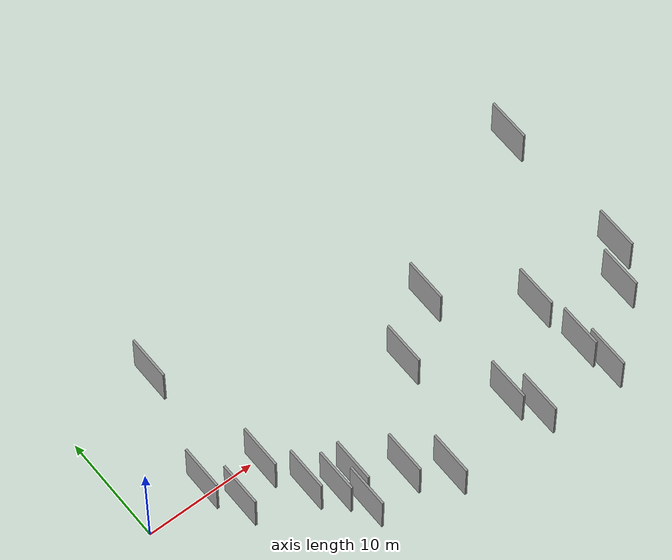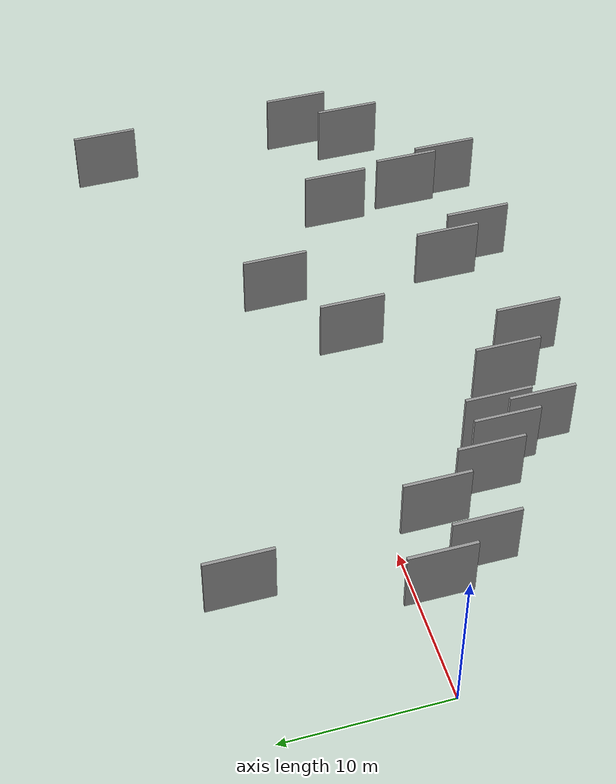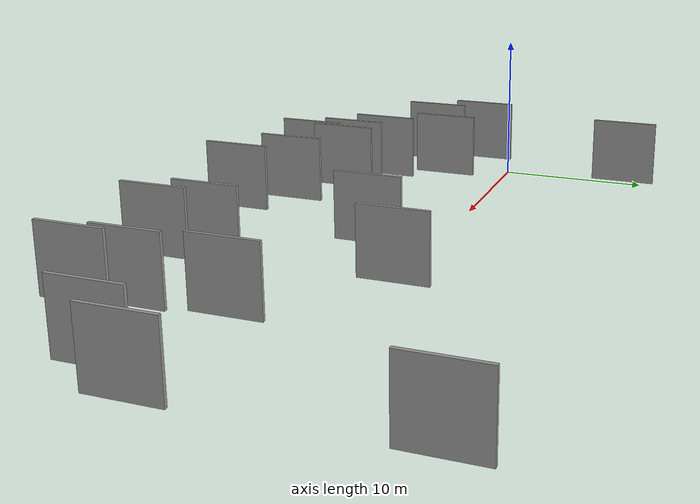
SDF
<sdf version="1.6">
 <world name="default">
  <scene>
   <sky><clouds><speed>12</speed></clouds></sky>
   <ambient>0.4 0.4 0.4 1</ambient>
   <background>0.7 0.7 0.7 1</background>
   <shadows>1</shadows>
  </scene>
  <gravity>0 0 -9.8066</gravity>
  <magnetic_field>6e-06 2.3e-05 -4.2e-05</magnetic_field>
  <physics default="0" name="default_physics" type="ode">
   <ode>
    <solver>
     <type>quick</type>
     <iters>10</iters>
     <sor>1.0</sor>
     <use_dynamic_moi_rescaling>0</use_dynamic_moi_rescaling>
    </solver>
    <constraints>
     <cfm>0</cfm>
     <erp>0.2</erp>
     <contact_max_correcting_vel>100</contact_max_correcting_vel>
     <contact_surface_layer>0.001</contact_surface_layer>
    </constraints>
   </ode>
   <max_step_size>0.004</max_step_size>
   <real_time_factor>1</real_time_factor>
   <real_time_update_rate>250</real_time_update_rate>
  </physics>
  <light name="sun" type="directional">
   <pose>0 0 10 0 0 0</pose>
   <diffuse>0.8 0.8 0.8 1</diffuse>
   <specular>0.2 0.2 0.2 1</specular>
   <attenuation>
    <range>1000</range>
    <constant>0.9</constant>
    <linear>0.01</linear>
    <quadratic>0.001</quadratic>
   </attenuation>
   <direction>-0.5 0.1 -0.9</direction>
  </light>
  <model name="grey_wall_1">
   <static>1</static>
   <pose>6.3646 -3.5503 2.5 0.000000 0.000000 1.570796</pose>
   <link name="link">
    <pose>0 0 2.00 0 0 0</pose>
    <collision name="collision"><geometry><box><size>4.00 0.2 4.00</size></box></geometry></collision>
    <visual name="visual">
     <cast_shadows>0</cast_shadows>
     <geometry><box><size>4.00 0.2 4.00</size></box></geometry>
     <material>
      <script>
       <uri>model://grey_wall/materials/scripts</uri>
       <uri>model://grey_wall/materials/textures</uri>
       <name>vrc/grey_wall</name>
      </script>
     </material>
    </visual>
   </link>
  </model>
  <model name="grey_wall_2">
   <static>1</static>
   <pose>18.1929 -9.2385 2.5 0.000000 0.000000 1.570796</pose>
   <link name="link">
    <pose>0 0 2.00 0 0 0</pose>
    <collision name="collision"><geometry><box><size>4.00 0.2 4.00</size></box></geometry></collision>
    <visual name="visual">
     <cast_shadows>0</cast_shadows>
     <geometry><box><size>4.00 0.2 4.00</size></box></geometry>
     <material>
      <script>
       <uri>model://grey_wall/materials/scripts</uri>
       <uri>model://grey_wall/materials/textures</uri>
       <name>vrc/grey_wall</name>
      </script>
     </material>
    </visual>
   </link>
  </model>
  <model name="grey_wall_3">
   <static>1</static>
   <pose>24.1748 -1.6012 2.5 0.000000 0.000000 1.570796</pose>
   <link name="link">
    <pose>0 0 2.00 0 0 0</pose>
    <collision name="collision"><geometry><box><size>4.00 0.2 4.00</size></box></geometry></collision>
    <visual name="visual">
     <cast_shadows>0</cast_shadows>
     <geometry><box><size>4.00 0.2 4.00</size></box></geometry>
     <material>
      <script>
       <uri>model://grey_wall/materials/scripts</uri>
       <uri>model://grey_wall/materials/textures</uri>
       <name>vrc/grey_wall</name>
      </script>
     </material>
    </visual>
   </link>
  </model>
  <model name="grey_wall_4">
   <static>1</static>
   <pose>12.9888 -7.2146 2.5 0.000000 0.000000 1.570796</pose>
   <link name="link">
    <pose>0 0 2.00 0 0 0</pose>
    <collision name="collision"><geometry><box><size>4.00 0.2 4.00</size></box></geometry></collision>
    <visual name="visual">
     <cast_shadows>0</cast_shadows>
     <geometry><box><size>4.00 0.2 4.00</size></box></geometry>
     <material>
      <script>
       <uri>model://grey_wall/materials/scripts</uri>
       <uri>model://grey_wall/materials/textures</uri>
       <name>vrc/grey_wall</name>
      </script>
     </material>
    </visual>
   </link>
  </model>
  <model name="grey_wall_5">
   <static>1</static>
   <pose>14.0566 -9.7447 2.5 0.000000 0.000000 1.570796</pose>
   <link name="link">
    <pose>0 0 2.00 0 0 0</pose>
    <collision name="collision"><geometry><box><size>4.00 0.2 4.00</size></box></geometry></collision>
    <visual name="visual">
     <cast_shadows>0</cast_shadows>
     <geometry><box><size>4.00 0.2 4.00</size></box></geometry>
     <material>
      <script>
       <uri>model://grey_wall/materials/scripts</uri>
       <uri>model://grey_wall/materials/textures</uri>
       <name>vrc/grey_wall</name>
      </script>
     </material>
    </visual>
   </link>
  </model>
  <model name="grey_wall_6">
   <static>1</static>
   <pose>14.5924 -7.2852 2.5 0.000000 0.000000 1.570796</pose>
   <link name="link">
    <pose>0 0 2.00 0 0 0</pose>
    <collision name="collision"><geometry><box><size>4.00 0.2 4.00</size></box></geometry></collision>
    <visual name="visual">
     <cast_shadows>0</cast_shadows>
     <geometry><box><size>4.00 0.2 4.00</size></box></geometry>
     <material>
      <script>
       <uri>model://grey_wall/materials/scripts</uri>
       <uri>model://grey_wall/materials/textures</uri>
       <name>vrc/grey_wall</name>
      </script>
     </material>
    </visual>
   </link>
  </model>
  <model name="grey_wall_7">
   <static>1</static>
   <pose>20.9524 -11.5685 2.5 0.000000 0.000000 1.570796</pose>
   <link name="link">
    <pose>0 0 2.00 0 0 0</pose>
    <collision name="collision"><geometry><box><size>4.00 0.2 4.00</size></box></geometry></collision>
    <visual name="visual">
     <cast_shadows>0</cast_shadows>
     <geometry><box><size>4.00 0.2 4.00</size></box></geometry>
     <material>
      <script>
       <uri>model://grey_wall/materials/scripts</uri>
       <uri>model://grey_wall/materials/textures</uri>
       <name>vrc/grey_wall</name>
      </script>
     </material>
    </visual>
   </link>
  </model>
  <model name="grey_wall_8">
   <static>1</static>
   <pose>11.2541 -5.6298 2.5 0.000000 0.000000 1.570796</pose>
   <link name="link">
    <pose>0 0 2.00 0 0 0</pose>
    <collision name="collision"><geometry><box><size>4.00 0.2 4.00</size></box></geometry></collision>
    <visual name="visual">
     <cast_shadows>0</cast_shadows>
     <geometry><box><size>4.00 0.2 4.00</size></box></geometry>
     <material>
      <script>
       <uri>model://grey_wall/materials/scripts</uri>
       <uri>model://grey_wall/materials/textures</uri>
       <name>vrc/grey_wall</name>
      </script>
     </material>
    </visual>
   </link>
  </model>
  <model name="grey_wall_9">
   <static>1</static>
   <pose>28.6543 -9.2042 2.5 0.000000 0.000000 1.570796</pose>
   <link name="link">
    <pose>0 0 2.00 0 0 0</pose>
    <collision name="collision"><geometry><box><size>4.00 0.2 4.00</size></box></geometry></collision>
    <visual name="visual">
     <cast_shadows>0</cast_shadows>
     <geometry><box><size>4.00 0.2 4.00</size></box></geometry>
     <material>
      <script>
       <uri>model://grey_wall/materials/scripts</uri>
       <uri>model://grey_wall/materials/textures</uri>
       <name>vrc/grey_wall</name>
      </script>
     </material>
    </visual>
   </link>
  </model>
  <model name="grey_wall_10">
   <static>1</static>
   <pose>9.6110 -1.8973 2.5 0.000000 0.000000 1.570796</pose>
   <link name="link">
    <pose>0 0 2.00 0 0 0</pose>
    <collision name="collision"><geometry><box><size>4.00 0.2 4.00</size></box></geometry></collision>
    <visual name="visual">
     <cast_shadows>0</cast_shadows>
     <geometry><box><size>4.00 0.2 4.00</size></box></geometry>
     <material>
      <script>
       <uri>model://grey_wall/materials/scripts</uri>
       <uri>model://grey_wall/materials/textures</uri>
       <name>vrc/grey_wall</name>
      </script>
     </material>
    </visual>
   </link>
  </model>
  <model name="grey_wall_11">
   <static>1</static>
   <pose>4.8964 -0.5349 2.5 0.000000 0.000000 1.570796</pose>
   <link name="link">
    <pose>0 0 2.00 0 0 0</pose>
    <collision name="collision"><geometry><box><size>4.00 0.2 4.00</size></box></geometry></collision>
    <visual name="visual">
     <cast_shadows>0</cast_shadows>
     <geometry><box><size>4.00 0.2 4.00</size></box></geometry>
     <material>
      <script>
       <uri>model://grey_wall/materials/scripts</uri>
       <uri>model://grey_wall/materials/textures</uri>
       <name>vrc/grey_wall</name>
      </script>
     </material>
    </visual>
   </link>
  </model>
  <model name="grey_wall_12">
   <static>1</static>
   <pose>43.8986 9.3973 2.5 0.000000 0.000000 1.570796</pose>
   <link name="link">
    <pose>0 0 2.00 0 0 0</pose>
    <collision name="collision"><geometry><box><size>4.00 0.2 4.00</size></box></geometry></collision>
    <visual name="visual">
     <cast_shadows>0</cast_shadows>
     <geometry><box><size>4.00 0.2 4.00</size></box></geometry>
     <material>
      <script>
       <uri>model://grey_wall/materials/scripts</uri>
       <uri>model://grey_wall/materials/textures</uri>
       <name>vrc/grey_wall</name>
      </script>
     </material>
    </visual>
   </link>
  </model>
  <model name="grey_wall_13">
   <static>1</static>
   <pose>42.1802 -6.8385 2.5 0.000000 0.000000 1.570796</pose>
   <link name="link">
    <pose>0 0 2.00 0 0 0</pose>
    <collision name="collision"><geometry><box><size>4.00 0.2 4.00</size></box></geometry></collision>
    <visual name="visual">
     <cast_shadows>0</cast_shadows>
     <geometry><box><size>4.00 0.2 4.00</size></box></geometry>
     <material>
      <script>
       <uri>model://grey_wall/materials/scripts</uri>
       <uri>model://grey_wall/materials/textures</uri>
       <name>vrc/grey_wall</name>
      </script>
     </material>
    </visual>
   </link>
  </model>
  <model name="grey_wall_14">
   <static>1</static>
   <pose>29.8864 -11.6411 2.5 0.000000 0.000000 1.570796</pose>
   <link name="link">
    <pose>0 0 2.00 0 0 0</pose>
    <collision name="collision"><geometry><box><size>4.00 0.2 4.00</size></box></geometry></collision>
    <visual name="visual">
     <cast_shadows>0</cast_shadows>
     <geometry><box><size>4.00 0.2 4.00</size></box></geometry>
     <material>
      <script>
       <uri>model://grey_wall/materials/scripts</uri>
       <uri>model://grey_wall/materials/textures</uri>
       <name>vrc/grey_wall</name>
      </script>
     </material>
    </visual>
   </link>
  </model>
  <model name="grey_wall_15">
   <static>1</static>
   <pose>36.7092 -11.7967 2.5 0.000000 0.000000 1.570796</pose>
   <link name="link">
    <pose>0 0 2.00 0 0 0</pose>
    <collision name="collision"><geometry><box><size>4.00 0.2 4.00</size></box></geometry></collision>
    <visual name="visual">
     <cast_shadows>0</cast_shadows>
     <geometry><box><size>4.00 0.2 4.00</size></box></geometry>
     <material>
      <script>
       <uri>model://grey_wall/materials/scripts</uri>
       <uri>model://grey_wall/materials/textures</uri>
       <name>vrc/grey_wall</name>
      </script>
     </material>
    </visual>
   </link>
  </model>
  <model name="grey_wall_16">
   <static>1</static>
   <pose>35.7289 -4.0509 2.5 0.000000 0.000000 1.570796</pose>
   <link name="link">
    <pose>0 0 2.00 0 0 0</pose>
    <collision name="collision"><geometry><box><size>4.00 0.2 4.00</size></box></geometry></collision>
    <visual name="visual">
     <cast_shadows>0</cast_shadows>
     <geometry><box><size>4.00 0.2 4.00</size></box></geometry>
     <material>
      <script>
       <uri>model://grey_wall/materials/scripts</uri>
       <uri>model://grey_wall/materials/textures</uri>
       <name>vrc/grey_wall</name>
      </script>
     </material>
    </visual>
   </link>
  </model>
  <model name="grey_wall_17">
   <static>1</static>
   <pose>7.4956 9.8112 2.5 0.000000 0.000000 1.570796</pose>
   <link name="link">
    <pose>0 0 2.00 0 0 0</pose>
    <collision name="collision"><geometry><box><size>4.00 0.2 4.00</size></box></geometry></collision>
    <visual name="visual">
     <cast_shadows>0</cast_shadows>
     <geometry><box><size>4.00 0.2 4.00</size></box></geometry>
     <material>
      <script>
       <uri>model://grey_wall/materials/scripts</uri>
       <uri>model://grey_wall/materials/textures</uri>
       <name>vrc/grey_wall</name>
      </script>
     </material>
    </visual>
   </link>
  </model>
  <model name="grey_wall_18">
   <static>1</static>
   <pose>36.2053 -9.0167 2.5 0.000000 0.000000 1.570796</pose>
   <link name="link">
    <pose>0 0 2.00 0 0 0</pose>
    <collision name="collision"><geometry><box><size>4.00 0.2 4.00</size></box></geometry></collision>
    <visual name="visual">
     <cast_shadows>0</cast_shadows>
     <geometry><box><size>4.00 0.2 4.00</size></box></geometry>
     <material>
      <script>
       <uri>model://grey_wall/materials/scripts</uri>
       <uri>model://grey_wall/materials/textures</uri>
       <name>vrc/grey_wall</name>
      </script>
     </material>
    </visual>
   </link>
  </model>
  <model name="grey_wall_19">
   <static>1</static>
   <pose>44.2664 -3.8424 2.5 0.000000 0.000000 1.570796</pose>
   <link name="link">
    <pose>0 0 2.00 0 0 0</pose>
    <collision name="collision"><geometry><box><size>4.00 0.2 4.00</size></box></geometry></collision>
    <visual name="visual">
     <cast_shadows>0</cast_shadows>
     <geometry><box><size>4.00 0.2 4.00</size></box></geometry>
     <material>
      <script>
       <uri>model://grey_wall/materials/scripts</uri>
       <uri>model://grey_wall/materials/textures</uri>
       <name>vrc/grey_wall</name>
      </script>
     </material>
    </visual>
   </link>
  </model>
  <model name="grey_wall_20">
   <static>1</static>
   <pose>29.1568 1.8143 2.5 0.000000 0.000000 1.570796</pose>
   <link name="link">
    <pose>0 0 2.00 0 0 0</pose>
    <collision name="collision"><geometry><box><size>4.00 0.2 4.00</size></box></geometry></collision>
    <visual name="visual">
     <cast_shadows>0</cast_shadows>
     <geometry><box><size>4.00 0.2 4.00</size></box></geometry>
     <material>
      <script>
       <uri>model://grey_wall/materials/scripts</uri>
       <uri>model://grey_wall/materials/textures</uri>
       <name>vrc/grey_wall</name>
      </script>
     </material>
    </visual>
   </link>
  </model>
 </world>
</sdf>
